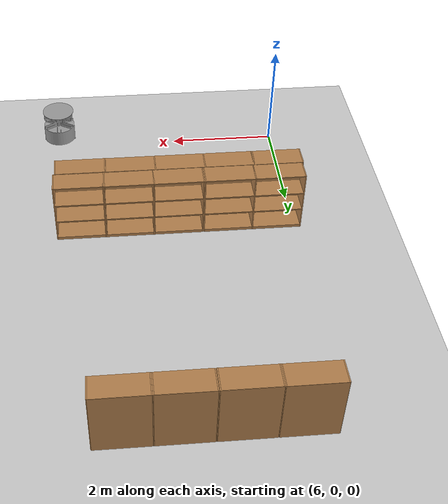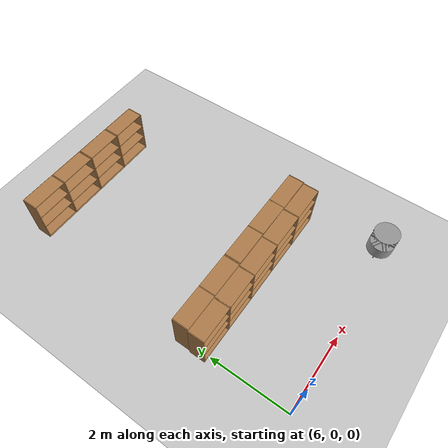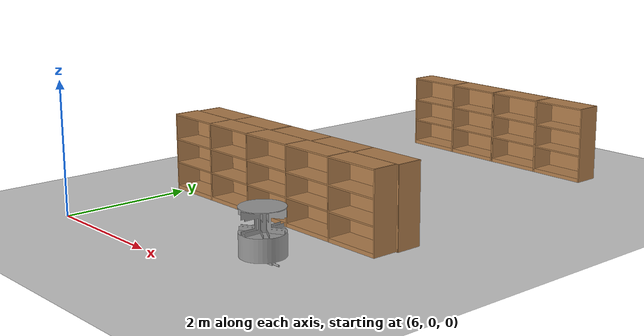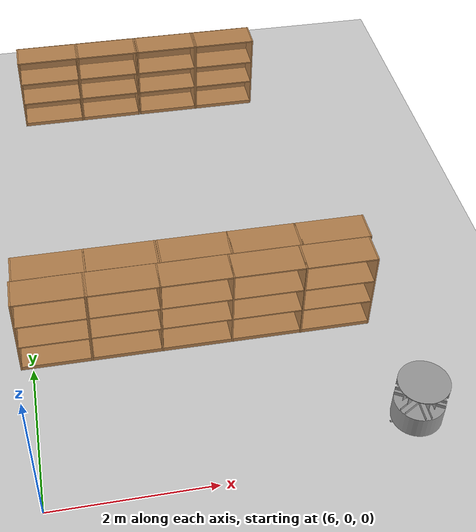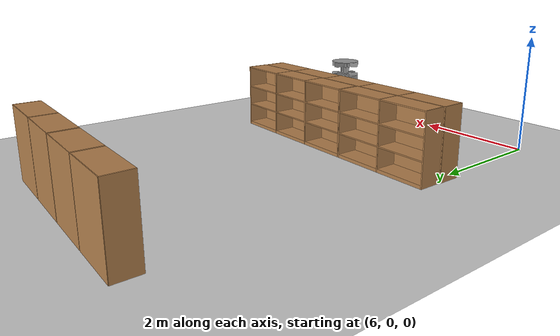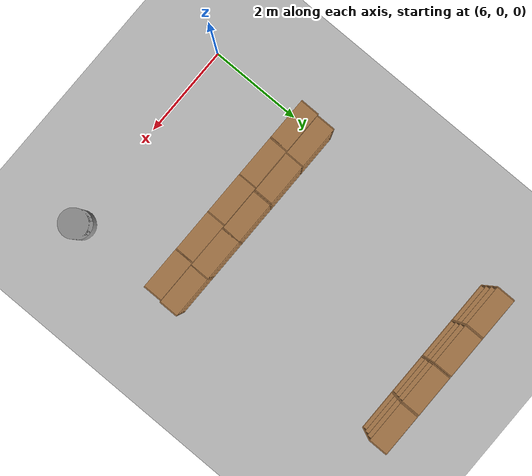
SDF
<sdf version="1.7">
 <world name="default">
  <model name="ground_plane">
   <static>1</static>
   <link name="link">
    <collision name="collision">
     <geometry><plane><normal>0 0 1</normal><size>100 100</size></plane></geometry>
     <surface><friction><ode><mu>100</mu><mu2>50</mu2></ode></friction></surface>
    </collision>
    <visual name="visual">
     <cast_shadows>0</cast_shadows>
     <geometry><plane><normal>0 0 1</normal><size>100 100</size></plane></geometry>
     <material>
      <script><uri>file://media/materials/scripts/gazebo.material</uri><name>Gazebo/Grey</name></script>
     </material>
    </visual>
   </link>
  </model>
  <model name="bookshelf_clone_0_clone_0_clone_clone_clone_clone_clone_1_clone_clone_clone_clone_clone_clone_clone_clone_clone_clone_0_clone_clone_clone_clone_clone_0_clone_1_clone_clone">
   <static>1</static>
   <link name="link">
    <inertial><mass>1</mass></inertial>
    <collision name="back">
     <pose>0 0.005 0.6 0 -0 0</pose>
     <geometry><box><size>0.9 0.01 1.2</size></box></geometry>
    </collision>
    <visual name="visual1">
     <pose>0 0.005 0.6 0 -0 0</pose>
     <geometry><box><size>0.9 0.01 1.2</size></box></geometry>
     <material>
      <script><uri>file://media/materials/scripts/gazebo.material</uri><name>Gazebo/Wood</name></script>
     </material>
    </visual>
    <collision name="left_side">
     <pose>0.45 -0.195 0.6 0 -0 0</pose>
     <geometry><box><size>0.02 0.4 1.2</size></box></geometry>
    </collision>
    <visual name="visual2">
     <pose>0.45 -0.195 0.6 0 -0 0</pose>
     <geometry><box><size>0.02 0.4 1.2</size></box></geometry>
     <material>
      <script><uri>file://media/materials/scripts/gazebo.material</uri><name>Gazebo/Wood</name></script>
     </material>
    </visual>
    <collision name="right_side">
     <pose>-0.45 -0.195 0.6 0 -0 0</pose>
     <geometry><box><size>0.02 0.4 1.2</size></box></geometry>
    </collision>
    <visual name="visual3">
     <pose>-0.45 -0.195 0.6 0 -0 0</pose>
     <geometry><box><size>0.02 0.4 1.2</size></box></geometry>
     <material>
      <script><uri>file://media/materials/scripts/gazebo.material</uri><name>Gazebo/Wood</name></script>
     </material>
    </visual>
    <collision name="bottom">
     <pose>0 -0.195 0.03 0 -0 0</pose>
     <geometry><box><size>0.88 0.4 0.06</size></box></geometry>
    </collision>
    <visual name="visual4">
     <pose>0 -0.195 0.03 0 -0 0</pose>
     <geometry><box><size>0.88 0.4 0.06</size></box></geometry>
     <material>
      <script><uri>file://media/materials/scripts/gazebo.material</uri><name>Gazebo/Wood</name></script>
     </material>
    </visual>
    <collision name="top">
     <pose>0 -0.195 1.19 0 -0 0</pose>
     <geometry><box><size>0.88 0.4 0.02</size></box></geometry>
    </collision>
    <visual name="visual5">
     <pose>0 -0.195 1.19 0 -0 0</pose>
     <geometry><box><size>0.88 0.4 0.02</size></box></geometry>
     <material>
      <script><uri>file://media/materials/scripts/gazebo.material</uri><name>Gazebo/Wood</name></script>
     </material>
    </visual>
    <collision name="low_shelf">
     <pose>0 -0.195 0.43 0 -0 0</pose>
     <geometry><box><size>0.88 0.4 0.02</size></box></geometry>
    </collision>
    <visual name="visual6">
     <pose>0 -0.195 0.43 0 -0 0</pose>
     <geometry><box><size>0.88 0.4 0.02</size></box></geometry>
     <material>
      <script><uri>file://media/materials/scripts/gazebo.material</uri><name>Gazebo/Wood</name></script>
     </material>
    </visual>
    <collision name="high_shelf">
     <pose>0 -0.195 0.8 0 -0 0</pose>
     <geometry><box><size>0.88 0.4 0.02</size></box></geometry>
    </collision>
    <visual name="visual7">
     <pose>0 -0.195 0.8 0 -0 0</pose>
     <geometry><box><size>0.88 0.4 0.02</size></box></geometry>
     <material>
      <script><uri>file://media/materials/scripts/gazebo.material</uri><name>Gazebo/Wood</name></script>
     </material>
    </visual>
   </link>
   <pose>6.30514 2.42546 0.004614 0 -0 0.000147</pose>
  </model>
  <model name="bookshelf_clone_0_clone_0_clone_clone_clone_clone_clone_1_clone_clone_clone_clone_clone_clone_clone_clone_clone_clone_0_clone_clone_clone_clone_clone_0_clone_1_clone_clone_0">
   <static>1</static>
   <link name="link">
    <inertial><mass>1</mass></inertial>
    <collision name="back">
     <pose>0 0.005 0.6 0 -0 0</pose>
     <geometry><box><size>0.9 0.01 1.2</size></box></geometry>
    </collision>
    <visual name="visual1">
     <pose>0 0.005 0.6 0 -0 0</pose>
     <geometry><box><size>0.9 0.01 1.2</size></box></geometry>
     <material>
      <script><uri>file://media/materials/scripts/gazebo.material</uri><name>Gazebo/Wood</name></script>
     </material>
    </visual>
    <collision name="left_side">
     <pose>0.45 -0.195 0.6 0 -0 0</pose>
     <geometry><box><size>0.02 0.4 1.2</size></box></geometry>
    </collision>
    <visual name="visual2">
     <pose>0.45 -0.195 0.6 0 -0 0</pose>
     <geometry><box><size>0.02 0.4 1.2</size></box></geometry>
     <material>
      <script><uri>file://media/materials/scripts/gazebo.material</uri><name>Gazebo/Wood</name></script>
     </material>
    </visual>
    <collision name="right_side">
     <pose>-0.45 -0.195 0.6 0 -0 0</pose>
     <geometry><box><size>0.02 0.4 1.2</size></box></geometry>
    </collision>
    <visual name="visual3">
     <pose>-0.45 -0.195 0.6 0 -0 0</pose>
     <geometry><box><size>0.02 0.4 1.2</size></box></geometry>
     <material>
      <script><uri>file://media/materials/scripts/gazebo.material</uri><name>Gazebo/Wood</name></script>
     </material>
    </visual>
    <collision name="bottom">
     <pose>0 -0.195 0.03 0 -0 0</pose>
     <geometry><box><size>0.88 0.4 0.06</size></box></geometry>
    </collision>
    <visual name="visual4">
     <pose>0 -0.195 0.03 0 -0 0</pose>
     <geometry><box><size>0.88 0.4 0.06</size></box></geometry>
     <material>
      <script><uri>file://media/materials/scripts/gazebo.material</uri><name>Gazebo/Wood</name></script>
     </material>
    </visual>
    <collision name="top">
     <pose>0 -0.195 1.19 0 -0 0</pose>
     <geometry><box><size>0.88 0.4 0.02</size></box></geometry>
    </collision>
    <visual name="visual5">
     <pose>0 -0.195 1.19 0 -0 0</pose>
     <geometry><box><size>0.88 0.4 0.02</size></box></geometry>
     <material>
      <script><uri>file://media/materials/scripts/gazebo.material</uri><name>Gazebo/Wood</name></script>
     </material>
    </visual>
    <collision name="low_shelf">
     <pose>0 -0.195 0.43 0 -0 0</pose>
     <geometry><box><size>0.88 0.4 0.02</size></box></geometry>
    </collision>
    <visual name="visual6">
     <pose>0 -0.195 0.43 0 -0 0</pose>
     <geometry><box><size>0.88 0.4 0.02</size></box></geometry>
     <material>
      <script><uri>file://media/materials/scripts/gazebo.material</uri><name>Gazebo/Wood</name></script>
     </material>
    </visual>
    <collision name="high_shelf">
     <pose>0 -0.195 0.8 0 -0 0</pose>
     <geometry><box><size>0.88 0.4 0.02</size></box></geometry>
    </collision>
    <visual name="visual7">
     <pose>0 -0.195 0.8 0 -0 0</pose>
     <geometry><box><size>0.88 0.4 0.02</size></box></geometry>
     <material>
      <script><uri>file://media/materials/scripts/gazebo.material</uri><name>Gazebo/Wood</name></script>
     </material>
    </visual>
   </link>
   <pose>7.19071 2.42546 0.004614 0 -0 0.000147</pose>
  </model>
  <model name="bookshelf_clone_0_clone_0_clone_clone_clone_clone_clone_1_clone_clone_clone_clone_clone_clone_clone_clone_clone_clone_0_clone_clone_clone_clone_clone_0_clone_1_clone_clone_1">
   <static>1</static>
   <link name="link">
    <inertial><mass>1</mass></inertial>
    <collision name="back">
     <pose>0 0.005 0.6 0 -0 0</pose>
     <geometry><box><size>0.9 0.01 1.2</size></box></geometry>
    </collision>
    <visual name="visual1">
     <pose>0 0.005 0.6 0 -0 0</pose>
     <geometry><box><size>0.9 0.01 1.2</size></box></geometry>
     <material>
      <script><uri>file://media/materials/scripts/gazebo.material</uri><name>Gazebo/Wood</name></script>
     </material>
    </visual>
    <collision name="left_side">
     <pose>0.45 -0.195 0.6 0 -0 0</pose>
     <geometry><box><size>0.02 0.4 1.2</size></box></geometry>
    </collision>
    <visual name="visual2">
     <pose>0.45 -0.195 0.6 0 -0 0</pose>
     <geometry><box><size>0.02 0.4 1.2</size></box></geometry>
     <material>
      <script><uri>file://media/materials/scripts/gazebo.material</uri><name>Gazebo/Wood</name></script>
     </material>
    </visual>
    <collision name="right_side">
     <pose>-0.45 -0.195 0.6 0 -0 0</pose>
     <geometry><box><size>0.02 0.4 1.2</size></box></geometry>
    </collision>
    <visual name="visual3">
     <pose>-0.45 -0.195 0.6 0 -0 0</pose>
     <geometry><box><size>0.02 0.4 1.2</size></box></geometry>
     <material>
      <script><uri>file://media/materials/scripts/gazebo.material</uri><name>Gazebo/Wood</name></script>
     </material>
    </visual>
    <collision name="bottom">
     <pose>0 -0.195 0.03 0 -0 0</pose>
     <geometry><box><size>0.88 0.4 0.06</size></box></geometry>
    </collision>
    <visual name="visual4">
     <pose>0 -0.195 0.03 0 -0 0</pose>
     <geometry><box><size>0.88 0.4 0.06</size></box></geometry>
     <material>
      <script><uri>file://media/materials/scripts/gazebo.material</uri><name>Gazebo/Wood</name></script>
     </material>
    </visual>
    <collision name="top">
     <pose>0 -0.195 1.19 0 -0 0</pose>
     <geometry><box><size>0.88 0.4 0.02</size></box></geometry>
    </collision>
    <visual name="visual5">
     <pose>0 -0.195 1.19 0 -0 0</pose>
     <geometry><box><size>0.88 0.4 0.02</size></box></geometry>
     <material>
      <script><uri>file://media/materials/scripts/gazebo.material</uri><name>Gazebo/Wood</name></script>
     </material>
    </visual>
    <collision name="low_shelf">
     <pose>0 -0.195 0.43 0 -0 0</pose>
     <geometry><box><size>0.88 0.4 0.02</size></box></geometry>
    </collision>
    <visual name="visual6">
     <pose>0 -0.195 0.43 0 -0 0</pose>
     <geometry><box><size>0.88 0.4 0.02</size></box></geometry>
     <material>
      <script><uri>file://media/materials/scripts/gazebo.material</uri><name>Gazebo/Wood</name></script>
     </material>
    </visual>
    <collision name="high_shelf">
     <pose>0 -0.195 0.8 0 -0 0</pose>
     <geometry><box><size>0.88 0.4 0.02</size></box></geometry>
    </collision>
    <visual name="visual7">
     <pose>0 -0.195 0.8 0 -0 0</pose>
     <geometry><box><size>0.88 0.4 0.02</size></box></geometry>
     <material>
      <script><uri>file://media/materials/scripts/gazebo.material</uri><name>Gazebo/Wood</name></script>
     </material>
    </visual>
   </link>
   <pose>8.08736 2.42546 0.004614 0 -0 0.000147</pose>
  </model>
  <model name="bookshelf_clone_0_clone_0_clone_clone_clone_clone_clone_1_clone_clone_clone_clone_clone_clone_clone_clone_clone_clone_0_clone_clone_clone_clone_clone_0_clone_1_clone_clone_2">
   <static>1</static>
   <link name="link">
    <inertial><mass>1</mass></inertial>
    <collision name="back">
     <pose>0 0.005 0.6 0 -0 0</pose>
     <geometry><box><size>0.9 0.01 1.2</size></box></geometry>
    </collision>
    <visual name="visual1">
     <pose>0 0.005 0.6 0 -0 0</pose>
     <geometry><box><size>0.9 0.01 1.2</size></box></geometry>
     <material>
      <script><uri>file://media/materials/scripts/gazebo.material</uri><name>Gazebo/Wood</name></script>
     </material>
    </visual>
    <collision name="left_side">
     <pose>0.45 -0.195 0.6 0 -0 0</pose>
     <geometry><box><size>0.02 0.4 1.2</size></box></geometry>
    </collision>
    <visual name="visual2">
     <pose>0.45 -0.195 0.6 0 -0 0</pose>
     <geometry><box><size>0.02 0.4 1.2</size></box></geometry>
     <material>
      <script><uri>file://media/materials/scripts/gazebo.material</uri><name>Gazebo/Wood</name></script>
     </material>
    </visual>
    <collision name="right_side">
     <pose>-0.45 -0.195 0.6 0 -0 0</pose>
     <geometry><box><size>0.02 0.4 1.2</size></box></geometry>
    </collision>
    <visual name="visual3">
     <pose>-0.45 -0.195 0.6 0 -0 0</pose>
     <geometry><box><size>0.02 0.4 1.2</size></box></geometry>
     <material>
      <script><uri>file://media/materials/scripts/gazebo.material</uri><name>Gazebo/Wood</name></script>
     </material>
    </visual>
    <collision name="bottom">
     <pose>0 -0.195 0.03 0 -0 0</pose>
     <geometry><box><size>0.88 0.4 0.06</size></box></geometry>
    </collision>
    <visual name="visual4">
     <pose>0 -0.195 0.03 0 -0 0</pose>
     <geometry><box><size>0.88 0.4 0.06</size></box></geometry>
     <material>
      <script><uri>file://media/materials/scripts/gazebo.material</uri><name>Gazebo/Wood</name></script>
     </material>
    </visual>
    <collision name="top">
     <pose>0 -0.195 1.19 0 -0 0</pose>
     <geometry><box><size>0.88 0.4 0.02</size></box></geometry>
    </collision>
    <visual name="visual5">
     <pose>0 -0.195 1.19 0 -0 0</pose>
     <geometry><box><size>0.88 0.4 0.02</size></box></geometry>
     <material>
      <script><uri>file://media/materials/scripts/gazebo.material</uri><name>Gazebo/Wood</name></script>
     </material>
    </visual>
    <collision name="low_shelf">
     <pose>0 -0.195 0.43 0 -0 0</pose>
     <geometry><box><size>0.88 0.4 0.02</size></box></geometry>
    </collision>
    <visual name="visual6">
     <pose>0 -0.195 0.43 0 -0 0</pose>
     <geometry><box><size>0.88 0.4 0.02</size></box></geometry>
     <material>
      <script><uri>file://media/materials/scripts/gazebo.material</uri><name>Gazebo/Wood</name></script>
     </material>
    </visual>
    <collision name="high_shelf">
     <pose>0 -0.195 0.8 0 -0 0</pose>
     <geometry><box><size>0.88 0.4 0.02</size></box></geometry>
    </collision>
    <visual name="visual7">
     <pose>0 -0.195 0.8 0 -0 0</pose>
     <geometry><box><size>0.88 0.4 0.02</size></box></geometry>
     <material>
      <script><uri>file://media/materials/scripts/gazebo.material</uri><name>Gazebo/Wood</name></script>
     </material>
    </visual>
   </link>
   <pose>8.98744 2.42546 0.004614 0 -0 0.000147</pose>
  </model>
  <model name="bookshelf_clone_0_clone_0_clone_clone_clone_clone_clone_1_clone_clone_clone_clone_clone_clone_clone_clone_clone_clone_0_clone_clone_clone_clone_clone_0_clone_1_clone_clone_2_clone">
   <static>1</static>
   <link name="link">
    <inertial><mass>1</mass></inertial>
    <collision name="back">
     <pose>0 0.005 0.6 0 -0 0</pose>
     <geometry><box><size>0.9 0.01 1.2</size></box></geometry>
    </collision>
    <visual name="visual1">
     <pose>0 0.005 0.6 0 -0 0</pose>
     <geometry><box><size>0.9 0.01 1.2</size></box></geometry>
     <material>
      <script><uri>file://media/materials/scripts/gazebo.material</uri><name>Gazebo/Wood</name></script>
     </material>
    </visual>
    <collision name="left_side">
     <pose>0.45 -0.195 0.6 0 -0 0</pose>
     <geometry><box><size>0.02 0.4 1.2</size></box></geometry>
    </collision>
    <visual name="visual2">
     <pose>0.45 -0.195 0.6 0 -0 0</pose>
     <geometry><box><size>0.02 0.4 1.2</size></box></geometry>
     <material>
      <script><uri>file://media/materials/scripts/gazebo.material</uri><name>Gazebo/Wood</name></script>
     </material>
    </visual>
    <collision name="right_side">
     <pose>-0.45 -0.195 0.6 0 -0 0</pose>
     <geometry><box><size>0.02 0.4 1.2</size></box></geometry>
    </collision>
    <visual name="visual3">
     <pose>-0.45 -0.195 0.6 0 -0 0</pose>
     <geometry><box><size>0.02 0.4 1.2</size></box></geometry>
     <material>
      <script><uri>file://media/materials/scripts/gazebo.material</uri><name>Gazebo/Wood</name></script>
     </material>
    </visual>
    <collision name="bottom">
     <pose>0 -0.195 0.03 0 -0 0</pose>
     <geometry><box><size>0.88 0.4 0.06</size></box></geometry>
    </collision>
    <visual name="visual4">
     <pose>0 -0.195 0.03 0 -0 0</pose>
     <geometry><box><size>0.88 0.4 0.06</size></box></geometry>
     <material>
      <script><uri>file://media/materials/scripts/gazebo.material</uri><name>Gazebo/Wood</name></script>
     </material>
    </visual>
    <collision name="top">
     <pose>0 -0.195 1.19 0 -0 0</pose>
     <geometry><box><size>0.88 0.4 0.02</size></box></geometry>
    </collision>
    <visual name="visual5">
     <pose>0 -0.195 1.19 0 -0 0</pose>
     <geometry><box><size>0.88 0.4 0.02</size></box></geometry>
     <material>
      <script><uri>file://media/materials/scripts/gazebo.material</uri><name>Gazebo/Wood</name></script>
     </material>
    </visual>
    <collision name="low_shelf">
     <pose>0 -0.195 0.43 0 -0 0</pose>
     <geometry><box><size>0.88 0.4 0.02</size></box></geometry>
    </collision>
    <visual name="visual6">
     <pose>0 -0.195 0.43 0 -0 0</pose>
     <geometry><box><size>0.88 0.4 0.02</size></box></geometry>
     <material>
      <script><uri>file://media/materials/scripts/gazebo.material</uri><name>Gazebo/Wood</name></script>
     </material>
    </visual>
    <collision name="high_shelf">
     <pose>0 -0.195 0.8 0 -0 0</pose>
     <geometry><box><size>0.88 0.4 0.02</size></box></geometry>
    </collision>
    <visual name="visual7">
     <pose>0 -0.195 0.8 0 -0 0</pose>
     <geometry><box><size>0.88 0.4 0.02</size></box></geometry>
     <material>
      <script><uri>file://media/materials/scripts/gazebo.material</uri><name>Gazebo/Wood</name></script>
     </material>
    </visual>
   </link>
   <pose>9.89241 2.42311 0.004614 0 -0 0.000147</pose>
  </model>
  <model name="bookshelf_clone_0_clone_0_clone_clone_clone_0_clone_clone">
   <static>1</static>
   <link name="link">
    <inertial><mass>1</mass></inertial>
    <collision name="back">
     <pose>0 0.005 0.6 0 -0 0</pose>
     <geometry><box><size>0.9 0.01 1.2</size></box></geometry>
    </collision>
    <visual name="visual1">
     <pose>0 0.005 0.6 0 -0 0</pose>
     <geometry><box><size>0.9 0.01 1.2</size></box></geometry>
     <material>
      <script><uri>file://media/materials/scripts/gazebo.material</uri><name>Gazebo/Wood</name></script>
     </material>
    </visual>
    <collision name="left_side">
     <pose>0.45 -0.195 0.6 0 -0 0</pose>
     <geometry><box><size>0.02 0.4 1.2</size></box></geometry>
    </collision>
    <visual name="visual2">
     <pose>0.45 -0.195 0.6 0 -0 0</pose>
     <geometry><box><size>0.02 0.4 1.2</size></box></geometry>
     <material>
      <script><uri>file://media/materials/scripts/gazebo.material</uri><name>Gazebo/Wood</name></script>
     </material>
    </visual>
    <collision name="right_side">
     <pose>-0.45 -0.195 0.6 0 -0 0</pose>
     <geometry><box><size>0.02 0.4 1.2</size></box></geometry>
    </collision>
    <visual name="visual3">
     <pose>-0.45 -0.195 0.6 0 -0 0</pose>
     <geometry><box><size>0.02 0.4 1.2</size></box></geometry>
     <material>
      <script><uri>file://media/materials/scripts/gazebo.material</uri><name>Gazebo/Wood</name></script>
     </material>
    </visual>
    <collision name="bottom">
     <pose>0 -0.195 0.03 0 -0 0</pose>
     <geometry><box><size>0.88 0.4 0.06</size></box></geometry>
    </collision>
    <visual name="visual4">
     <pose>0 -0.195 0.03 0 -0 0</pose>
     <geometry><box><size>0.88 0.4 0.06</size></box></geometry>
     <material>
      <script><uri>file://media/materials/scripts/gazebo.material</uri><name>Gazebo/Wood</name></script>
     </material>
    </visual>
    <collision name="top">
     <pose>0 -0.195 1.19 0 -0 0</pose>
     <geometry><box><size>0.88 0.4 0.02</size></box></geometry>
    </collision>
    <visual name="visual5">
     <pose>0 -0.195 1.19 0 -0 0</pose>
     <geometry><box><size>0.88 0.4 0.02</size></box></geometry>
     <material>
      <script><uri>file://media/materials/scripts/gazebo.material</uri><name>Gazebo/Wood</name></script>
     </material>
    </visual>
    <collision name="low_shelf">
     <pose>0 -0.195 0.43 0 -0 0</pose>
     <geometry><box><size>0.88 0.4 0.02</size></box></geometry>
    </collision>
    <visual name="visual6">
     <pose>0 -0.195 0.43 0 -0 0</pose>
     <geometry><box><size>0.88 0.4 0.02</size></box></geometry>
     <material>
      <script><uri>file://media/materials/scripts/gazebo.material</uri><name>Gazebo/Wood</name></script>
     </material>
    </visual>
    <collision name="high_shelf">
     <pose>0 -0.195 0.8 0 -0 0</pose>
     <geometry><box><size>0.88 0.4 0.02</size></box></geometry>
    </collision>
    <visual name="visual7">
     <pose>0 -0.195 0.8 0 -0 0</pose>
     <geometry><box><size>0.88 0.4 0.02</size></box></geometry>
     <material>
      <script><uri>file://media/materials/scripts/gazebo.material</uri><name>Gazebo/Wood</name></script>
     </material>
    </visual>
   </link>
   <pose>9.92287 2.44108 0 0 0 -3.14107</pose>
  </model>
  <model name="bookshelf_clone_0_clone_0_clone_clone_clone_0_clone_clone_0">
   <static>1</static>
   <link name="link">
    <inertial><mass>1</mass></inertial>
    <collision name="back">
     <pose>0 0.005 0.6 0 -0 0</pose>
     <geometry><box><size>0.9 0.01 1.2</size></box></geometry>
    </collision>
    <visual name="visual1">
     <pose>0 0.005 0.6 0 -0 0</pose>
     <geometry><box><size>0.9 0.01 1.2</size></box></geometry>
     <material>
      <script><uri>file://media/materials/scripts/gazebo.material</uri><name>Gazebo/Wood</name></script>
     </material>
    </visual>
    <collision name="left_side">
     <pose>0.45 -0.195 0.6 0 -0 0</pose>
     <geometry><box><size>0.02 0.4 1.2</size></box></geometry>
    </collision>
    <visual name="visual2">
     <pose>0.45 -0.195 0.6 0 -0 0</pose>
     <geometry><box><size>0.02 0.4 1.2</size></box></geometry>
     <material>
      <script><uri>file://media/materials/scripts/gazebo.material</uri><name>Gazebo/Wood</name></script>
     </material>
    </visual>
    <collision name="right_side">
     <pose>-0.45 -0.195 0.6 0 -0 0</pose>
     <geometry><box><size>0.02 0.4 1.2</size></box></geometry>
    </collision>
    <visual name="visual3">
     <pose>-0.45 -0.195 0.6 0 -0 0</pose>
     <geometry><box><size>0.02 0.4 1.2</size></box></geometry>
     <material>
      <script><uri>file://media/materials/scripts/gazebo.material</uri><name>Gazebo/Wood</name></script>
     </material>
    </visual>
    <collision name="bottom">
     <pose>0 -0.195 0.03 0 -0 0</pose>
     <geometry><box><size>0.88 0.4 0.06</size></box></geometry>
    </collision>
    <visual name="visual4">
     <pose>0 -0.195 0.03 0 -0 0</pose>
     <geometry><box><size>0.88 0.4 0.06</size></box></geometry>
     <material>
      <script><uri>file://media/materials/scripts/gazebo.material</uri><name>Gazebo/Wood</name></script>
     </material>
    </visual>
    <collision name="top">
     <pose>0 -0.195 1.19 0 -0 0</pose>
     <geometry><box><size>0.88 0.4 0.02</size></box></geometry>
    </collision>
    <visual name="visual5">
     <pose>0 -0.195 1.19 0 -0 0</pose>
     <geometry><box><size>0.88 0.4 0.02</size></box></geometry>
     <material>
      <script><uri>file://media/materials/scripts/gazebo.material</uri><name>Gazebo/Wood</name></script>
     </material>
    </visual>
    <collision name="low_shelf">
     <pose>0 -0.195 0.43 0 -0 0</pose>
     <geometry><box><size>0.88 0.4 0.02</size></box></geometry>
    </collision>
    <visual name="visual6">
     <pose>0 -0.195 0.43 0 -0 0</pose>
     <geometry><box><size>0.88 0.4 0.02</size></box></geometry>
     <material>
      <script><uri>file://media/materials/scripts/gazebo.material</uri><name>Gazebo/Wood</name></script>
     </material>
    </visual>
    <collision name="high_shelf">
     <pose>0 -0.195 0.8 0 -0 0</pose>
     <geometry><box><size>0.88 0.4 0.02</size></box></geometry>
    </collision>
    <visual name="visual7">
     <pose>0 -0.195 0.8 0 -0 0</pose>
     <geometry><box><size>0.88 0.4 0.02</size></box></geometry>
     <material>
      <script><uri>file://media/materials/scripts/gazebo.material</uri><name>Gazebo/Wood</name></script>
     </material>
    </visual>
   </link>
   <pose>9.03991 2.44108 0 0 0 -3.14107</pose>
  </model>
  <model name="bookshelf_clone_0_clone_0_clone_clone_clone_0_clone_clone_1">
   <static>1</static>
   <link name="link">
    <inertial><mass>1</mass></inertial>
    <collision name="back">
     <pose>0 0.005 0.6 0 -0 0</pose>
     <geometry><box><size>0.9 0.01 1.2</size></box></geometry>
    </collision>
    <visual name="visual1">
     <pose>0 0.005 0.6 0 -0 0</pose>
     <geometry><box><size>0.9 0.01 1.2</size></box></geometry>
     <material>
      <script><uri>file://media/materials/scripts/gazebo.material</uri><name>Gazebo/Wood</name></script>
     </material>
    </visual>
    <collision name="left_side">
     <pose>0.45 -0.195 0.6 0 -0 0</pose>
     <geometry><box><size>0.02 0.4 1.2</size></box></geometry>
    </collision>
    <visual name="visual2">
     <pose>0.45 -0.195 0.6 0 -0 0</pose>
     <geometry><box><size>0.02 0.4 1.2</size></box></geometry>
     <material>
      <script><uri>file://media/materials/scripts/gazebo.material</uri><name>Gazebo/Wood</name></script>
     </material>
    </visual>
    <collision name="right_side">
     <pose>-0.45 -0.195 0.6 0 -0 0</pose>
     <geometry><box><size>0.02 0.4 1.2</size></box></geometry>
    </collision>
    <visual name="visual3">
     <pose>-0.45 -0.195 0.6 0 -0 0</pose>
     <geometry><box><size>0.02 0.4 1.2</size></box></geometry>
     <material>
      <script><uri>file://media/materials/scripts/gazebo.material</uri><name>Gazebo/Wood</name></script>
     </material>
    </visual>
    <collision name="bottom">
     <pose>0 -0.195 0.03 0 -0 0</pose>
     <geometry><box><size>0.88 0.4 0.06</size></box></geometry>
    </collision>
    <visual name="visual4">
     <pose>0 -0.195 0.03 0 -0 0</pose>
     <geometry><box><size>0.88 0.4 0.06</size></box></geometry>
     <material>
      <script><uri>file://media/materials/scripts/gazebo.material</uri><name>Gazebo/Wood</name></script>
     </material>
    </visual>
    <collision name="top">
     <pose>0 -0.195 1.19 0 -0 0</pose>
     <geometry><box><size>0.88 0.4 0.02</size></box></geometry>
    </collision>
    <visual name="visual5">
     <pose>0 -0.195 1.19 0 -0 0</pose>
     <geometry><box><size>0.88 0.4 0.02</size></box></geometry>
     <material>
      <script><uri>file://media/materials/scripts/gazebo.material</uri><name>Gazebo/Wood</name></script>
     </material>
    </visual>
    <collision name="low_shelf">
     <pose>0 -0.195 0.43 0 -0 0</pose>
     <geometry><box><size>0.88 0.4 0.02</size></box></geometry>
    </collision>
    <visual name="visual6">
     <pose>0 -0.195 0.43 0 -0 0</pose>
     <geometry><box><size>0.88 0.4 0.02</size></box></geometry>
     <material>
      <script><uri>file://media/materials/scripts/gazebo.material</uri><name>Gazebo/Wood</name></script>
     </material>
    </visual>
    <collision name="high_shelf">
     <pose>0 -0.195 0.8 0 -0 0</pose>
     <geometry><box><size>0.88 0.4 0.02</size></box></geometry>
    </collision>
    <visual name="visual7">
     <pose>0 -0.195 0.8 0 -0 0</pose>
     <geometry><box><size>0.88 0.4 0.02</size></box></geometry>
     <material>
      <script><uri>file://media/materials/scripts/gazebo.material</uri><name>Gazebo/Wood</name></script>
     </material>
    </visual>
   </link>
   <pose>8.15073 2.44108 0 0 0 -3.14107</pose>
  </model>
  <model name="bookshelf_clone_0_clone_0_clone_clone_clone_0_clone_clone_1_clone">
   <static>1</static>
   <link name="link">
    <inertial><mass>1</mass></inertial>
    <collision name="back">
     <pose>0 0.005 0.6 0 -0 0</pose>
     <geometry><box><size>0.9 0.01 1.2</size></box></geometry>
    </collision>
    <visual name="visual1">
     <pose>0 0.005 0.6 0 -0 0</pose>
     <geometry><box><size>0.9 0.01 1.2</size></box></geometry>
     <material>
      <script><uri>file://media/materials/scripts/gazebo.material</uri><name>Gazebo/Wood</name></script>
     </material>
    </visual>
    <collision name="left_side">
     <pose>0.45 -0.195 0.6 0 -0 0</pose>
     <geometry><box><size>0.02 0.4 1.2</size></box></geometry>
    </collision>
    <visual name="visual2">
     <pose>0.45 -0.195 0.6 0 -0 0</pose>
     <geometry><box><size>0.02 0.4 1.2</size></box></geometry>
     <material>
      <script><uri>file://media/materials/scripts/gazebo.material</uri><name>Gazebo/Wood</name></script>
     </material>
    </visual>
    <collision name="right_side">
     <pose>-0.45 -0.195 0.6 0 -0 0</pose>
     <geometry><box><size>0.02 0.4 1.2</size></box></geometry>
    </collision>
    <visual name="visual3">
     <pose>-0.45 -0.195 0.6 0 -0 0</pose>
     <geometry><box><size>0.02 0.4 1.2</size></box></geometry>
     <material>
      <script><uri>file://media/materials/scripts/gazebo.material</uri><name>Gazebo/Wood</name></script>
     </material>
    </visual>
    <collision name="bottom">
     <pose>0 -0.195 0.03 0 -0 0</pose>
     <geometry><box><size>0.88 0.4 0.06</size></box></geometry>
    </collision>
    <visual name="visual4">
     <pose>0 -0.195 0.03 0 -0 0</pose>
     <geometry><box><size>0.88 0.4 0.06</size></box></geometry>
     <material>
      <script><uri>file://media/materials/scripts/gazebo.material</uri><name>Gazebo/Wood</name></script>
     </material>
    </visual>
    <collision name="top">
     <pose>0 -0.195 1.19 0 -0 0</pose>
     <geometry><box><size>0.88 0.4 0.02</size></box></geometry>
    </collision>
    <visual name="visual5">
     <pose>0 -0.195 1.19 0 -0 0</pose>
     <geometry><box><size>0.88 0.4 0.02</size></box></geometry>
     <material>
      <script><uri>file://media/materials/scripts/gazebo.material</uri><name>Gazebo/Wood</name></script>
     </material>
    </visual>
    <collision name="low_shelf">
     <pose>0 -0.195 0.43 0 -0 0</pose>
     <geometry><box><size>0.88 0.4 0.02</size></box></geometry>
    </collision>
    <visual name="visual6">
     <pose>0 -0.195 0.43 0 -0 0</pose>
     <geometry><box><size>0.88 0.4 0.02</size></box></geometry>
     <material>
      <script><uri>file://media/materials/scripts/gazebo.material</uri><name>Gazebo/Wood</name></script>
     </material>
    </visual>
    <collision name="high_shelf">
     <pose>0 -0.195 0.8 0 -0 0</pose>
     <geometry><box><size>0.88 0.4 0.02</size></box></geometry>
    </collision>
    <visual name="visual7">
     <pose>0 -0.195 0.8 0 -0 0</pose>
     <geometry><box><size>0.88 0.4 0.02</size></box></geometry>
     <material>
      <script><uri>file://media/materials/scripts/gazebo.material</uri><name>Gazebo/Wood</name></script>
     </material>
    </visual>
   </link>
   <pose>7.22796 2.44108 0 0 0 -3.14107</pose>
  </model>
  <model name="bookshelf_clone_0_clone_0_clone_clone_clone_0_clone_clone_1_clone_0">
   <static>1</static>
   <link name="link">
    <inertial><mass>1</mass></inertial>
    <collision name="back">
     <pose>0 0.005 0.6 0 -0 0</pose>
     <geometry><box><size>0.9 0.01 1.2</size></box></geometry>
    </collision>
    <visual name="visual1">
     <pose>0 0.005 0.6 0 -0 0</pose>
     <geometry><box><size>0.9 0.01 1.2</size></box></geometry>
     <material>
      <script><uri>file://media/materials/scripts/gazebo.material</uri><name>Gazebo/Wood</name></script>
     </material>
    </visual>
    <collision name="left_side">
     <pose>0.45 -0.195 0.6 0 -0 0</pose>
     <geometry><box><size>0.02 0.4 1.2</size></box></geometry>
    </collision>
    <visual name="visual2">
     <pose>0.45 -0.195 0.6 0 -0 0</pose>
     <geometry><box><size>0.02 0.4 1.2</size></box></geometry>
     <material>
      <script><uri>file://media/materials/scripts/gazebo.material</uri><name>Gazebo/Wood</name></script>
     </material>
    </visual>
    <collision name="right_side">
     <pose>-0.45 -0.195 0.6 0 -0 0</pose>
     <geometry><box><size>0.02 0.4 1.2</size></box></geometry>
    </collision>
    <visual name="visual3">
     <pose>-0.45 -0.195 0.6 0 -0 0</pose>
     <geometry><box><size>0.02 0.4 1.2</size></box></geometry>
     <material>
      <script><uri>file://media/materials/scripts/gazebo.material</uri><name>Gazebo/Wood</name></script>
     </material>
    </visual>
    <collision name="bottom">
     <pose>0 -0.195 0.03 0 -0 0</pose>
     <geometry><box><size>0.88 0.4 0.06</size></box></geometry>
    </collision>
    <visual name="visual4">
     <pose>0 -0.195 0.03 0 -0 0</pose>
     <geometry><box><size>0.88 0.4 0.06</size></box></geometry>
     <material>
      <script><uri>file://media/materials/scripts/gazebo.material</uri><name>Gazebo/Wood</name></script>
     </material>
    </visual>
    <collision name="top">
     <pose>0 -0.195 1.19 0 -0 0</pose>
     <geometry><box><size>0.88 0.4 0.02</size></box></geometry>
    </collision>
    <visual name="visual5">
     <pose>0 -0.195 1.19 0 -0 0</pose>
     <geometry><box><size>0.88 0.4 0.02</size></box></geometry>
     <material>
      <script><uri>file://media/materials/scripts/gazebo.material</uri><name>Gazebo/Wood</name></script>
     </material>
    </visual>
    <collision name="low_shelf">
     <pose>0 -0.195 0.43 0 -0 0</pose>
     <geometry><box><size>0.88 0.4 0.02</size></box></geometry>
    </collision>
    <visual name="visual6">
     <pose>0 -0.195 0.43 0 -0 0</pose>
     <geometry><box><size>0.88 0.4 0.02</size></box></geometry>
     <material>
      <script><uri>file://media/materials/scripts/gazebo.material</uri><name>Gazebo/Wood</name></script>
     </material>
    </visual>
    <collision name="high_shelf">
     <pose>0 -0.195 0.8 0 -0 0</pose>
     <geometry><box><size>0.88 0.4 0.02</size></box></geometry>
    </collision>
    <visual name="visual7">
     <pose>0 -0.195 0.8 0 -0 0</pose>
     <geometry><box><size>0.88 0.4 0.02</size></box></geometry>
     <material>
      <script><uri>file://media/materials/scripts/gazebo.material</uri><name>Gazebo/Wood</name></script>
     </material>
    </visual>
   </link>
   <pose>6.33009 2.44108 0 0 0 -3.14107</pose>
  </model>
  <model name="bookshelf_clone_0_clone_0_clone_clone_clone_clone_clone_1_clone_clone_clone_clone_clone_clone_clone_clone_clone_clone_0_clone_clone_clone_clone_clone_0_clone_1_clone_0_clone">
   <static>1</static>
   <link name="link">
    <inertial><mass>1</mass></inertial>
    <collision name="back">
     <pose>0 0.005 0.6 0 -0 0</pose>
     <geometry><box><size>0.9 0.01 1.2</size></box></geometry>
    </collision>
    <visual name="visual1">
     <pose>0 0.005 0.6 0 -0 0</pose>
     <geometry><box><size>0.9 0.01 1.2</size></box></geometry>
     <material>
      <script><uri>file://media/materials/scripts/gazebo.material</uri><name>Gazebo/Wood</name></script>
     </material>
    </visual>
    <collision name="left_side">
     <pose>0.45 -0.195 0.6 0 -0 0</pose>
     <geometry><box><size>0.02 0.4 1.2</size></box></geometry>
    </collision>
    <visual name="visual2">
     <pose>0.45 -0.195 0.6 0 -0 0</pose>
     <geometry><box><size>0.02 0.4 1.2</size></box></geometry>
     <material>
      <script><uri>file://media/materials/scripts/gazebo.material</uri><name>Gazebo/Wood</name></script>
     </material>
    </visual>
    <collision name="right_side">
     <pose>-0.45 -0.195 0.6 0 -0 0</pose>
     <geometry><box><size>0.02 0.4 1.2</size></box></geometry>
    </collision>
    <visual name="visual3">
     <pose>-0.45 -0.195 0.6 0 -0 0</pose>
     <geometry><box><size>0.02 0.4 1.2</size></box></geometry>
     <material>
      <script><uri>file://media/materials/scripts/gazebo.material</uri><name>Gazebo/Wood</name></script>
     </material>
    </visual>
    <collision name="bottom">
     <pose>0 -0.195 0.03 0 -0 0</pose>
     <geometry><box><size>0.88 0.4 0.06</size></box></geometry>
    </collision>
    <visual name="visual4">
     <pose>0 -0.195 0.03 0 -0 0</pose>
     <geometry><box><size>0.88 0.4 0.06</size></box></geometry>
     <material>
      <script><uri>file://media/materials/scripts/gazebo.material</uri><name>Gazebo/Wood</name></script>
     </material>
    </visual>
    <collision name="top">
     <pose>0 -0.195 1.19 0 -0 0</pose>
     <geometry><box><size>0.88 0.4 0.02</size></box></geometry>
    </collision>
    <visual name="visual5">
     <pose>0 -0.195 1.19 0 -0 0</pose>
     <geometry><box><size>0.88 0.4 0.02</size></box></geometry>
     <material>
      <script><uri>file://media/materials/scripts/gazebo.material</uri><name>Gazebo/Wood</name></script>
     </material>
    </visual>
    <collision name="low_shelf">
     <pose>0 -0.195 0.43 0 -0 0</pose>
     <geometry><box><size>0.88 0.4 0.02</size></box></geometry>
    </collision>
    <visual name="visual6">
     <pose>0 -0.195 0.43 0 -0 0</pose>
     <geometry><box><size>0.88 0.4 0.02</size></box></geometry>
     <material>
      <script><uri>file://media/materials/scripts/gazebo.material</uri><name>Gazebo/Wood</name></script>
     </material>
    </visual>
    <collision name="high_shelf">
     <pose>0 -0.195 0.8 0 -0 0</pose>
     <geometry><box><size>0.88 0.4 0.02</size></box></geometry>
    </collision>
    <visual name="visual7">
     <pose>0 -0.195 0.8 0 -0 0</pose>
     <geometry><box><size>0.88 0.4 0.02</size></box></geometry>
     <material>
      <script><uri>file://media/materials/scripts/gazebo.material</uri><name>Gazebo/Wood</name></script>
     </material>
    </visual>
   </link>
   <pose>9.38071 7.38892 0.004614 0 -0 0.000147</pose>
  </model>
  <model name="bookshelf_clone_0_clone_0_clone_clone_clone_clone_clone_1_clone_clone_clone_clone_clone_clone_clone_clone_clone_clone_0_clone_clone_clone_clone_clone_0_clone_1_clone_0_clone_0">
   <static>1</static>
   <link name="link">
    <inertial><mass>1</mass></inertial>
    <collision name="back">
     <pose>0 0.005 0.6 0 -0 0</pose>
     <geometry><box><size>0.9 0.01 1.2</size></box></geometry>
    </collision>
    <visual name="visual1">
     <pose>0 0.005 0.6 0 -0 0</pose>
     <geometry><box><size>0.9 0.01 1.2</size></box></geometry>
     <material>
      <script><uri>file://media/materials/scripts/gazebo.material</uri><name>Gazebo/Wood</name></script>
     </material>
    </visual>
    <collision name="left_side">
     <pose>0.45 -0.195 0.6 0 -0 0</pose>
     <geometry><box><size>0.02 0.4 1.2</size></box></geometry>
    </collision>
    <visual name="visual2">
     <pose>0.45 -0.195 0.6 0 -0 0</pose>
     <geometry><box><size>0.02 0.4 1.2</size></box></geometry>
     <material>
      <script><uri>file://media/materials/scripts/gazebo.material</uri><name>Gazebo/Wood</name></script>
     </material>
    </visual>
    <collision name="right_side">
     <pose>-0.45 -0.195 0.6 0 -0 0</pose>
     <geometry><box><size>0.02 0.4 1.2</size></box></geometry>
    </collision>
    <visual name="visual3">
     <pose>-0.45 -0.195 0.6 0 -0 0</pose>
     <geometry><box><size>0.02 0.4 1.2</size></box></geometry>
     <material>
      <script><uri>file://media/materials/scripts/gazebo.material</uri><name>Gazebo/Wood</name></script>
     </material>
    </visual>
    <collision name="bottom">
     <pose>0 -0.195 0.03 0 -0 0</pose>
     <geometry><box><size>0.88 0.4 0.06</size></box></geometry>
    </collision>
    <visual name="visual4">
     <pose>0 -0.195 0.03 0 -0 0</pose>
     <geometry><box><size>0.88 0.4 0.06</size></box></geometry>
     <material>
      <script><uri>file://media/materials/scripts/gazebo.material</uri><name>Gazebo/Wood</name></script>
     </material>
    </visual>
    <collision name="top">
     <pose>0 -0.195 1.19 0 -0 0</pose>
     <geometry><box><size>0.88 0.4 0.02</size></box></geometry>
    </collision>
    <visual name="visual5">
     <pose>0 -0.195 1.19 0 -0 0</pose>
     <geometry><box><size>0.88 0.4 0.02</size></box></geometry>
     <material>
      <script><uri>file://media/materials/scripts/gazebo.material</uri><name>Gazebo/Wood</name></script>
     </material>
    </visual>
    <collision name="low_shelf">
     <pose>0 -0.195 0.43 0 -0 0</pose>
     <geometry><box><size>0.88 0.4 0.02</size></box></geometry>
    </collision>
    <visual name="visual6">
     <pose>0 -0.195 0.43 0 -0 0</pose>
     <geometry><box><size>0.88 0.4 0.02</size></box></geometry>
     <material>
      <script><uri>file://media/materials/scripts/gazebo.material</uri><name>Gazebo/Wood</name></script>
     </material>
    </visual>
    <collision name="high_shelf">
     <pose>0 -0.195 0.8 0 -0 0</pose>
     <geometry><box><size>0.88 0.4 0.02</size></box></geometry>
    </collision>
    <visual name="visual7">
     <pose>0 -0.195 0.8 0 -0 0</pose>
     <geometry><box><size>0.88 0.4 0.02</size></box></geometry>
     <material>
      <script><uri>file://media/materials/scripts/gazebo.material</uri><name>Gazebo/Wood</name></script>
     </material>
    </visual>
   </link>
   <pose>8.46019 7.38892 0.004614 0 -0 0.000147</pose>
  </model>
  <model name="bookshelf_clone_0_clone_0_clone_clone_clone_clone_clone_1_clone_clone_clone_clone_clone_clone_clone_clone_clone_clone_0_clone_clone_clone_clone_clone_0_clone_1_clone_0_clone_1">
   <static>1</static>
   <link name="link">
    <inertial><mass>1</mass></inertial>
    <collision name="back">
     <pose>0 0.005 0.6 0 -0 0</pose>
     <geometry><box><size>0.9 0.01 1.2</size></box></geometry>
    </collision>
    <visual name="visual1">
     <pose>0 0.005 0.6 0 -0 0</pose>
     <geometry><box><size>0.9 0.01 1.2</size></box></geometry>
     <material>
      <script><uri>file://media/materials/scripts/gazebo.material</uri><name>Gazebo/Wood</name></script>
     </material>
    </visual>
    <collision name="left_side">
     <pose>0.45 -0.195 0.6 0 -0 0</pose>
     <geometry><box><size>0.02 0.4 1.2</size></box></geometry>
    </collision>
    <visual name="visual2">
     <pose>0.45 -0.195 0.6 0 -0 0</pose>
     <geometry><box><size>0.02 0.4 1.2</size></box></geometry>
     <material>
      <script><uri>file://media/materials/scripts/gazebo.material</uri><name>Gazebo/Wood</name></script>
     </material>
    </visual>
    <collision name="right_side">
     <pose>-0.45 -0.195 0.6 0 -0 0</pose>
     <geometry><box><size>0.02 0.4 1.2</size></box></geometry>
    </collision>
    <visual name="visual3">
     <pose>-0.45 -0.195 0.6 0 -0 0</pose>
     <geometry><box><size>0.02 0.4 1.2</size></box></geometry>
     <material>
      <script><uri>file://media/materials/scripts/gazebo.material</uri><name>Gazebo/Wood</name></script>
     </material>
    </visual>
    <collision name="bottom">
     <pose>0 -0.195 0.03 0 -0 0</pose>
     <geometry><box><size>0.88 0.4 0.06</size></box></geometry>
    </collision>
    <visual name="visual4">
     <pose>0 -0.195 0.03 0 -0 0</pose>
     <geometry><box><size>0.88 0.4 0.06</size></box></geometry>
     <material>
      <script><uri>file://media/materials/scripts/gazebo.material</uri><name>Gazebo/Wood</name></script>
     </material>
    </visual>
    <collision name="top">
     <pose>0 -0.195 1.19 0 -0 0</pose>
     <geometry><box><size>0.88 0.4 0.02</size></box></geometry>
    </collision>
    <visual name="visual5">
     <pose>0 -0.195 1.19 0 -0 0</pose>
     <geometry><box><size>0.88 0.4 0.02</size></box></geometry>
     <material>
      <script><uri>file://media/materials/scripts/gazebo.material</uri><name>Gazebo/Wood</name></script>
     </material>
    </visual>
    <collision name="low_shelf">
     <pose>0 -0.195 0.43 0 -0 0</pose>
     <geometry><box><size>0.88 0.4 0.02</size></box></geometry>
    </collision>
    <visual name="visual6">
     <pose>0 -0.195 0.43 0 -0 0</pose>
     <geometry><box><size>0.88 0.4 0.02</size></box></geometry>
     <material>
      <script><uri>file://media/materials/scripts/gazebo.material</uri><name>Gazebo/Wood</name></script>
     </material>
    </visual>
    <collision name="high_shelf">
     <pose>0 -0.195 0.8 0 -0 0</pose>
     <geometry><box><size>0.88 0.4 0.02</size></box></geometry>
    </collision>
    <visual name="visual7">
     <pose>0 -0.195 0.8 0 -0 0</pose>
     <geometry><box><size>0.88 0.4 0.02</size></box></geometry>
     <material>
      <script><uri>file://media/materials/scripts/gazebo.material</uri><name>Gazebo/Wood</name></script>
     </material>
    </visual>
   </link>
   <pose>7.53456 7.38892 0.004614 0 -0 0.000147</pose>
  </model>
  <model name="bookshelf_clone_0_clone_0_clone_clone_clone_clone_clone_1_clone_clone_clone_clone_clone_clone_clone_clone_clone_clone_0_clone_clone_clone_clone_clone_0_clone_1_clone_0_clone_1_clone">
   <static>1</static>
   <link name="link">
    <inertial><mass>1</mass></inertial>
    <collision name="back">
     <pose>0 0.005 0.6 0 -0 0</pose>
     <geometry><box><size>0.9 0.01 1.2</size></box></geometry>
    </collision>
    <visual name="visual1">
     <pose>0 0.005 0.6 0 -0 0</pose>
     <geometry><box><size>0.9 0.01 1.2</size></box></geometry>
     <material>
      <script><uri>file://media/materials/scripts/gazebo.material</uri><name>Gazebo/Wood</name></script>
     </material>
    </visual>
    <collision name="left_side">
     <pose>0.45 -0.195 0.6 0 -0 0</pose>
     <geometry><box><size>0.02 0.4 1.2</size></box></geometry>
    </collision>
    <visual name="visual2">
     <pose>0.45 -0.195 0.6 0 -0 0</pose>
     <geometry><box><size>0.02 0.4 1.2</size></box></geometry>
     <material>
      <script><uri>file://media/materials/scripts/gazebo.material</uri><name>Gazebo/Wood</name></script>
     </material>
    </visual>
    <collision name="right_side">
     <pose>-0.45 -0.195 0.6 0 -0 0</pose>
     <geometry><box><size>0.02 0.4 1.2</size></box></geometry>
    </collision>
    <visual name="visual3">
     <pose>-0.45 -0.195 0.6 0 -0 0</pose>
     <geometry><box><size>0.02 0.4 1.2</size></box></geometry>
     <material>
      <script><uri>file://media/materials/scripts/gazebo.material</uri><name>Gazebo/Wood</name></script>
     </material>
    </visual>
    <collision name="bottom">
     <pose>0 -0.195 0.03 0 -0 0</pose>
     <geometry><box><size>0.88 0.4 0.06</size></box></geometry>
    </collision>
    <visual name="visual4">
     <pose>0 -0.195 0.03 0 -0 0</pose>
     <geometry><box><size>0.88 0.4 0.06</size></box></geometry>
     <material>
      <script><uri>file://media/materials/scripts/gazebo.material</uri><name>Gazebo/Wood</name></script>
     </material>
    </visual>
    <collision name="top">
     <pose>0 -0.195 1.19 0 -0 0</pose>
     <geometry><box><size>0.88 0.4 0.02</size></box></geometry>
    </collision>
    <visual name="visual5">
     <pose>0 -0.195 1.19 0 -0 0</pose>
     <geometry><box><size>0.88 0.4 0.02</size></box></geometry>
     <material>
      <script><uri>file://media/materials/scripts/gazebo.material</uri><name>Gazebo/Wood</name></script>
     </material>
    </visual>
    <collision name="low_shelf">
     <pose>0 -0.195 0.43 0 -0 0</pose>
     <geometry><box><size>0.88 0.4 0.02</size></box></geometry>
    </collision>
    <visual name="visual6">
     <pose>0 -0.195 0.43 0 -0 0</pose>
     <geometry><box><size>0.88 0.4 0.02</size></box></geometry>
     <material>
      <script><uri>file://media/materials/scripts/gazebo.material</uri><name>Gazebo/Wood</name></script>
     </material>
    </visual>
    <collision name="high_shelf">
     <pose>0 -0.195 0.8 0 -0 0</pose>
     <geometry><box><size>0.88 0.4 0.02</size></box></geometry>
    </collision>
    <visual name="visual7">
     <pose>0 -0.195 0.8 0 -0 0</pose>
     <geometry><box><size>0.88 0.4 0.02</size></box></geometry>
     <material>
      <script><uri>file://media/materials/scripts/gazebo.material</uri><name>Gazebo/Wood</name></script>
     </material>
    </visual>
   </link>
   <pose>6.61689 7.38892 0.004614 0 -0 0.000147</pose>
  </model>
  <model name="book_clone">
   <link name="link_0">
    <inertial>
     <mass>1</mass>
     <inertia>
      <ixx>0.166667</ixx>
      <ixy>0</ixy>
      <ixz>0</ixz>
      <iyy>0.166667</iyy>
      <iyz>0</iyz>
      <izz>0.166667</izz>
     </inertia>
    </inertial>
    <pose>3e-06 -5e-06 0 0 -0 0</pose>
    <visual name="visual">
     <geometry>
      <mesh><uri>/mnt/ENPM661p2/solidworks/textbookURDF/meshes/base_link.STL</uri><scale>1 1 1</scale></mesh>
     </geometry>
     <material>
      <lighting>1</lighting>
      <script><uri>file://media/materials/scripts/gazebo.material</uri><name>Gazebo/Grey</name></script>
      <shader type="pixel"/>
     </material>
    </visual>
    <collision name="collision">
     <geometry>
      <mesh><uri>/mnt/ENPM661p2/solidworks/textbookURDF/meshes/base_link.STL</uri><scale>1 1 1</scale></mesh>
     </geometry>
     <surface>
      <friction>
       <ode><mu>1</mu><mu2>1</mu2><fdir1>0 0 0</fdir1><slip1>0</slip1><slip2>0</slip2></ode>
       <torsional>
        <coefficient>1</coefficient>
        <patch_radius>0</patch_radius>
        <surface_radius>0</surface_radius>
        <use_patch_radius>1</use_patch_radius>
        <ode><slip>0</slip></ode>
       </torsional>
      </friction>
      <bounce><restitution_coefficient>0</restitution_coefficient><threshold>1e+06</threshold></bounce>
      <contact>
       <collide_without_contact>0</collide_without_contact>
       <collide_without_contact_bitmask>1</collide_without_contact_bitmask>
       <collide_bitmask>1</collide_bitmask>
       <ode>
        <soft_cfm>0</soft_cfm>
        <soft_erp>0.2</soft_erp>
        <kp>1e+13</kp>
        <kd>1</kd>
        <max_vel>0.01</max_vel>
        <min_depth>0</min_depth>
       </ode>
       <bullet>
        <split_impulse>1</split_impulse>
        <split_impulse_penetration_threshold>-0.01</split_impulse_penetration_threshold>
        <soft_cfm>0</soft_cfm>
        <soft_erp>0.2</soft_erp>
        <kp>1e+13</kp>
        <kd>1</kd>
       </bullet>
      </contact>
     </surface>
    </collision>
   </link>
   <static>0</static>
   <pose>10.3203 0.245477 1.05503 0 -0 0</pose>
  </model>
 </world>
</sdf>
